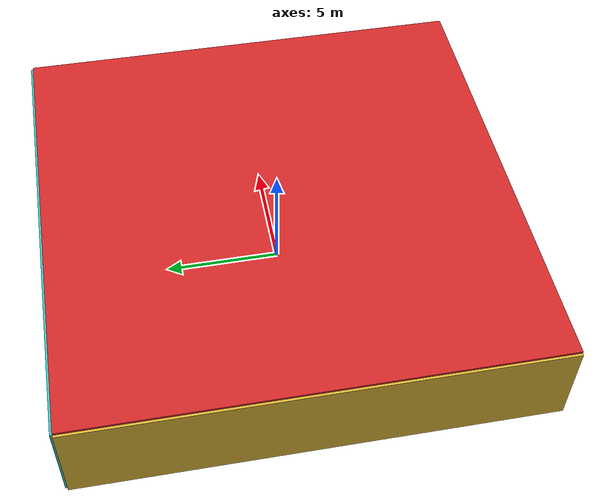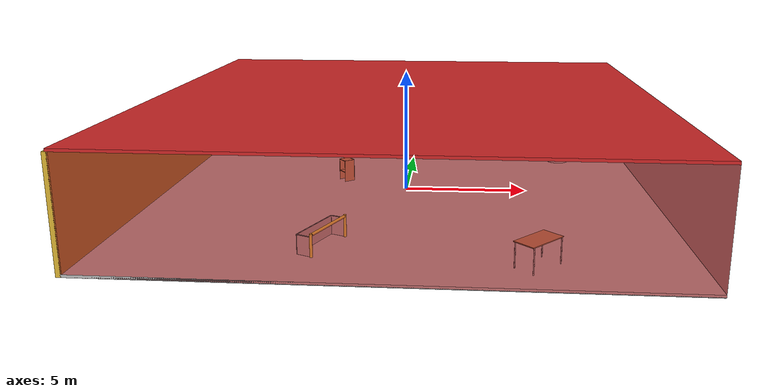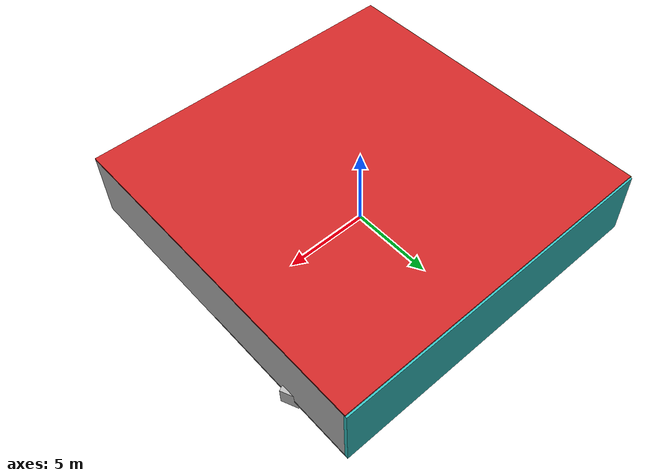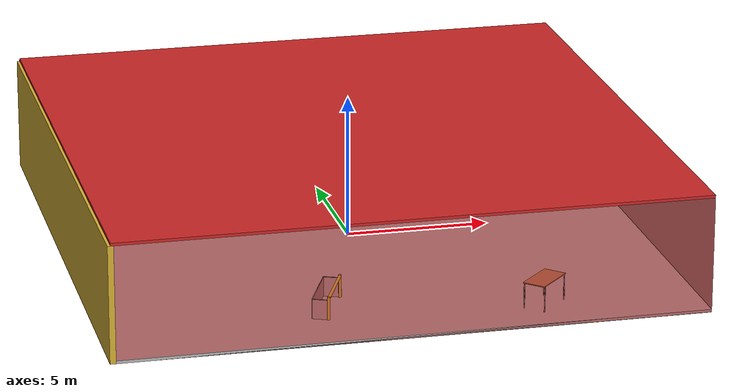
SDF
<sdf version="1.4">
 <world name="default">
  <physics type="ode">
   <max_step_size>0.001</max_step_size>
   <real_time_factor>1</real_time_factor>
   <real_time_update_rate>1000</real_time_update_rate>
   <gravity>0 0 -9.8</gravity>
  </physics>
  <scene><ambient>0.4 0.4 0.4 1</ambient><background>0.7 0.7 0.7 1</background><shadows>1</shadows></scene>
  <model name="Surrounding">
   <static>1</static>
   <link name="Ceiling">
    <collision name="Ceiling_Collision"><geometry><box><size>20 20 0.1</size></box></geometry></collision>
    <visual name="Ceiling_Visual">
     <geometry><box><size>20 20 0.1</size></box></geometry>
     <material>
      <script><uri>file://media/materials/scripts/gazebo.material</uri><name>Gazebo/Red</name></script>
     </material>
    </visual>
    <pose>0 0 4.05 0 0 0</pose>
   </link>
   <link name="Wall_South">
    <collision name="Wall_South_Collision">
     <geometry><box><size>20 0 4</size></box></geometry>
     <pose>0 0 2 0 -0 0</pose>
    </collision>
    <visual name="Wall_South_Visual">
     <pose>0 0 2 0 -0 0</pose>
     <geometry><box><size>20 0 4</size></box></geometry>
     <material>
      <script><uri>file://media/materials/scripts/gazebo.material</uri><name>Gazebo/RedTransparent</name></script>
     </material>
    </visual>
    <velocity_decay><linear>0</linear><angular>0</angular></velocity_decay>
    <pose>0 -10 0 0 -0 0</pose>
   </link>
   <link name="Wall_East">
    <collision name="Wall_21_Collision">
     <geometry><box><size>20 0 4</size></box></geometry>
     <pose>0 0 2 0 -0 0</pose>
    </collision>
    <visual name="Wall_21_Visual">
     <pose>0 0 2 0 -0 0</pose>
     <geometry><box><size>20 0 4</size></box></geometry>
     <material>
      <script><uri>file://media/materials/scripts/gazebo.material</uri><name>Gazebo/Pioneer2Body</name></script>
     </material>
    </visual>
    <velocity_decay><linear>0</linear><angular>0</angular></velocity_decay>
    <pose>10 0 0 0 -0 1.5708</pose>
   </link>
   <link name="Wall_North">
    <collision name="Wall_22_Collision">
     <geometry><box><size>20 0.2 4</size></box></geometry>
     <pose>0 0 2 0 -0 0</pose>
    </collision>
    <visual name="Wall_22_Visual">
     <pose>0 0 2 0 -0 0</pose>
     <geometry><box><size>20 0.2 4</size></box></geometry>
     <material>
      <script><uri>file://media/materials/scripts/gazebo.material</uri><name>Gazebo/Turquoise</name></script>
     </material>
    </visual>
    <velocity_decay><linear>0</linear><angular>0</angular></velocity_decay>
    <pose>0 10 0 0 -0 0</pose>
   </link>
   <link name="Wall_West">
    <collision name="Wall_23_Collision">
     <geometry><box><size>20 0.2 4</size></box></geometry>
     <pose>0 0 2 0 -0 0</pose>
    </collision>
    <visual name="Wall_23_Visual">
     <pose>0 0 2 0 -0 0</pose>
     <geometry><box><size>20 0.2 4</size></box></geometry>
     <material>
      <script><uri>file://media/materials/scripts/gazebo.material</uri><name>Gazebo/Gold</name></script>
     </material>
    </visual>
    <velocity_decay><linear>0</linear><angular>0</angular></velocity_decay>
    <pose>-10 0 0 0 0 -1.5708</pose>
   </link>
   <link name="Ground_link">
    <collision name="collision">
     <pose>0 0 .05 0 -0 0</pose>
     <geometry><box><size>20 20 0.1</size></box></geometry>
    </collision>
    <visual name="visual">
     <pose>0 0 .05 0 -0 0</pose>
     <geometry><box><size>20 20 0.1</size></box></geometry>
     <material>
      <script><uri>file://media/materials/scripts/gazebo.material</uri><name>Gazebo/PioneerBody</name></script>
     </material>
    </visual>
   </link>
   <static>1</static>
  </model>
  <spherical_coordinates>
   <surface_model>EARTH_WGS84</surface_model>
   <latitude_deg>0</latitude_deg>
   <longitude_deg>0</longitude_deg>
   <elevation>0</elevation>
   <heading_deg>0</heading_deg>
  </spherical_coordinates>
  <light name="lightball_0" type="diffuse">
   <diffuse>0.8 0.8 0.8 1</diffuse>
   <specular>0.2 0.2 0.2 1</specular>
   <attenuation>
    <range>100</range>
    <constant>0.7</constant>
    <linear>0.01</linear>
    <quadratic>0.001</quadratic>
   </attenuation>
   <direction>-0.5 0.1 -0.9</direction>
   <pose>1.91504260715 -8.3926449069 0.900678219334 0 0 0</pose>
  </light>
  <light name="lightball_1" type="diffuse">
   <diffuse>0.8 0.8 0.8 1</diffuse>
   <specular>0.2 0.2 0.2 1</specular>
   <attenuation>
    <range>100</range>
    <constant>0.7</constant>
    <linear>0.01</linear>
    <quadratic>0.001</quadratic>
   </attenuation>
   <direction>-0.5 0.1 -0.9</direction>
   <pose>-9.53707785545 1.76977716374 1.60056100468 0 0 0</pose>
  </light>
  <light name="lightball_2" type="diffuse">
   <diffuse>0.8 0.8 0.8 1</diffuse>
   <specular>0.2 0.2 0.2 1</specular>
   <attenuation>
    <range>100</range>
    <constant>0.7</constant>
    <linear>0.01</linear>
    <quadratic>0.001</quadratic>
   </attenuation>
   <direction>-0.5 0.1 -0.9</direction>
   <pose>-9.88690575918 4.07180819745 0.990848464383 0 0 0</pose>
  </light>
  <light name="lightball_3" type="diffuse">
   <diffuse>0.8 0.8 0.8 1</diffuse>
   <specular>0.2 0.2 0.2 1</specular>
   <attenuation>
    <range>100</range>
    <constant>0.7</constant>
    <linear>0.01</linear>
    <quadratic>0.001</quadratic>
   </attenuation>
   <direction>-0.5 0.1 -0.9</direction>
   <pose>-9.74606732374 -9.20239382388 0.625157746872 0 0 0</pose>
  </light>
  <light name="lightball_4" type="diffuse">
   <diffuse>0.8 0.8 0.8 1</diffuse>
   <specular>0.2 0.2 0.2 1</specular>
   <attenuation>
    <range>100</range>
    <constant>0.7</constant>
    <linear>0.01</linear>
    <quadratic>0.001</quadratic>
   </attenuation>
   <direction>-0.5 0.1 -0.9</direction>
   <pose>-4.77691938766 6.03308747492 2.98178288281 0 0 0</pose>
  </light>
  <include><uri>model://cabinet</uri><pose>-5.51768880356 4.96869121797 0 0 0 0.714054514764</pose></include>
  <include>
   <uri>model://robocup_3Dsim_goal</uri>
   <pose>-2.10958634166 -7.08756553242 0 0 0 2.74006760039</pose>
  </include>
  <include><uri>model://cabinet</uri><pose>-2.65688241586 0.785224672737 0 0 0 0.647351261415</pose></include>
  <include><uri>model://table</uri><pose>4.75377747926 -8.23504154927 0 0 0 0.800198356598</pose></include>
  <include>
   <uri>model://textured_shapes</uri>
   <pose>8.26622919153 5.25823593615 0 0 0 1.97684558378</pose>
  </include>
 </world>
</sdf>

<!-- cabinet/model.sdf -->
<sdf version="1.5">
  <model name="cabinet">
    <static>true</static>
    <link name="cabinet_bottom_plate">
      <inertial>
        <pose>0 0 -1 0 0 0</pose>
        <inertia>
          <ixx>2.050000</ixx>
          <ixy>0</ixy>
          <ixz>0</ixz>
          <iyy>2.050000</iyy>
          <iyz>0</iyz>
          <izz>2.050000</izz>
        </inertia>
        <mass>25.000000</mass>
      </inertial>
      <collision name="cabinet_bottom_plate_geom">
        <pose>0 0 0.010000 0 0 0</pose>
        <geometry>
          <box>
            <size>0.450000 0.450000 0.020000</size>
          </box>
        </geometry>
      </collision>
      <visual name="cabinet_bottom_plate_geom_visual">
        <pose>0 0 0.010000 0 0 0</pose>
        <geometry>
          <box>
            <size>0.450000 0.450000 0.020000</size>
          </box>
        </geometry>
        <material>
          <script>
            <uri>model://media/materials/scripts/gazebo.material</uri>
            <name>Gazebo/Wood</name>
          </script>
        </material>
      </visual>
      <collision name="cabinet_bottom_plate_geom_cabinet_back_plate">
        <pose>0.235000 0 0.510000 0 0 0</pose>
        <geometry>
          <box>
            <size>0.020000 0.450000 1.020000</size>
          </box>
        </geometry>
      </collision>
      <visual name="cabinet_bottom_plate_geom_cabinet_back_plate_visual">
        <pose>0.235000 0 0.510000 0 0 0</pose>
        <geometry>
          <box>
            <size>0.020000 0.450000 1.020000</size>
          </box>
        </geometry>
        <material>
          <script>
            <uri>model://media/materials/scripts/gazebo.material</uri>
            <name>Gazebo/Wood</name>
          </script>
        </material>
      </visual>
      <collision name="cabinet_bottom_plate_geom_cabinet_left_plate">
        <pose>0 0.235000 0.510000 0 0 0</pose>
        <geometry>
          <box>
            <size>0.450000 0.020000 1.020000</size>
          </box>
        </geometry>
      </collision>
      <visual name="cabinet_bottom_plate_geom_cabinet_left_plate_visual">
        <pose>0 0.235000 0.510000 0 0 0</pose>
        <geometry>
          <box>
            <size>0.450000 0.020000 1.020000</size>
          </box>
        </geometry>
        <material>
          <script>
            <uri>model://media/materials/scripts/gazebo.material</uri>
            <name>Gazebo/Wood</name>
          </script>
        </material>
      </visual>
      <collision name="cabinet_bottom_plate_geom_cabinet_middle_plate">
        <pose>0 0 0.510000 0 0 0</pose>
        <geometry>
          <box>
            <size>0.450000 0.450000 0.020000</size>
          </box>
        </geometry>
      </collision>
      <visual name="cabinet_bottom_plate_geom_cabinet_middle_plate_visual">
        <pose>0 0 0.510000 0 0 0</pose>
        <geometry>
          <box>
            <size>0.450000 0.450000 0.020000</size>
          </box>
        </geometry>
        <material>
          <script>
            <uri>model://media/materials/scripts/gazebo.material</uri>
            <name>Gazebo/Wood</name>
          </script>
        </material>
      </visual>
      <collision name="cabinet_bottom_plate_geom_cabinet_right_plate">
        <pose>0 -0.235000 0.510000 0 0 0</pose>
        <geometry>
          <box>
            <size>0.450000 0.020000 1.020000</size>
          </box>
        </geometry>
      </collision>
      <visual name="cabinet_bottom_plate_geom_cabinet_right_plate_visual">
        <pose>0 -0.235000 0.510000 0 0 0</pose>
        <geometry>
          <box>
            <size>0.450000 0.020000 1.020000</size>
          </box>
        </geometry>
        <material>
          <script>
            <uri>model://media/materials/scripts/gazebo.material</uri>
            <name>Gazebo/Wood</name>
          </script>
        </material>
      </visual>
      <collision name="cabinet_bottom_plate_geom_cabinet_top_plate">
        <pose>0 0 1.010000 0 0 0</pose>
        <geometry>
          <box>
            <size>0.450000 0.450000 0.020000</size>
          </box>
        </geometry>
      </collision>
      <visual name="cabinet_bottom_plate_geom_cabinet_top_plate_visual">
        <pose>0 0 1.010000 0 0 0</pose>
        <geometry>
          <box>
            <size>0.450000 0.450000 0.020000</size>
          </box>
        </geometry>
        <material>
          <script>
            <uri>model://media/materials/scripts/gazebo.material</uri>
            <name>Gazebo/Wood</name>
          </script>
        </material>
      </visual>
    </link>
  </model>
</sdf>

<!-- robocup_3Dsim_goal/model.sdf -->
<sdf version="1.5">
  <model name="robocup_3d_goal">
    <static>true</static>
    <link name="left_post">
      <pose>0 1.05 0.45 0 0 0</pose>
      <collision name="collision">
        <geometry>
          <cylinder>
            <radius>0.05</radius>
            <length>0.9</length>
          </cylinder>
        </geometry>
      </collision>
      <visual name="visual">
        <geometry>
          <cylinder>
            <radius>0.05</radius>
            <length>0.9</length>
          </cylinder>
        </geometry>
        <material>
          <script>
            <uri>file://media/materials/scripts/gazebo.material</uri>
            <name>Gazebo/ZincYellow</name>
          </script>
        </material>
      </visual>
    </link>
    <link name="left_support_horiz_lower">
      <pose>0.30 1.05 0.01 0 0 0</pose>
      <collision name="collision">
        <geometry>
          <box>
            <size>0.50 0.02 0.02</size>
          </box>
        </geometry>
      </collision>
      <visual name="visual">
        <geometry>
          <box>
            <size>0.50 0.02 0.02</size>
          </box>
        </geometry>
        <material>
          <script>
            <uri>file://media/materials/scripts/gazebo.material</uri>
            <name>Gazebo/White</name>
          </script>
        </material>
      </visual>
    </link>
    <link name="left_support_horiz_upper">
      <pose>0.30 1.05 0.79 0 0 0</pose>
      <collision name="collision">
        <geometry>
          <box>
            <size>0.50 0.02 0.02</size>
          </box>
        </geometry>
      </collision>
      <visual name="visual">
        <geometry>
          <box>
            <size>0.50 0.02 0.02</size>
          </box>
        </geometry>
        <material>
          <script>
            <uri>file://media/materials/scripts/gazebo.material</uri>
            <name>Gazebo/White</name>
          </script>
        </material>
      </visual>
    </link>
    <link name="left_support_vertical">
      <pose>0.56 1.05 0.4 0 1.5708 0</pose>
      <collision name="collision">
        <geometry>
          <box>
            <size>0.80 0.02 0.02</size>
          </box>
        </geometry>
      </collision>
      <visual name="visual">
        <geometry>
          <box>
            <size>0.80 0.02 0.02</size>
          </box>
        </geometry>
        <material>
          <script>
            <uri>file://media/materials/scripts/gazebo.material</uri>
            <name>Gazebo/White</name>
          </script>
        </material>
      </visual>
    </link>
    <link name="right_support_horiz_lower">
      <pose>0.30 -1.05 0.01 0 0 0</pose>
      <collision name="collision">
        <geometry>
          <box>
            <size>0.50 0.02 0.02</size>
          </box>
        </geometry>
      </collision>
      <visual name="visual">
        <geometry>
          <box>
            <size>0.50 0.02 0.02</size>
          </box>
        </geometry>
        <material>
          <script>
            <uri>file://media/materials/scripts/gazebo.material</uri>
            <name>Gazebo/White</name>
          </script>
        </material>
      </visual>
    </link>
    <link name="right_support_horiz_upper">
      <pose>0.30 -1.05 0.79 0 0 0</pose>
      <collision name="collision">
        <geometry>
          <box>
            <size>0.50 0.02 0.02</size>
          </box>
        </geometry>
      </collision>
      <visual name="visual">
        <geometry>
          <box>
            <size>0.50 0.02 0.02</size>
          </box>
        </geometry>
        <material>
          <script>
            <uri>file://media/materials/scripts/gazebo.material</uri>
            <name>Gazebo/White</name>
          </script>
        </material>
      </visual>
    </link>
    <link name="right_support_vertical">
      <pose>0.56 -1.05 0.4 0 1.5708 0</pose>
      <collision name="collision">
        <geometry>
          <box>
            <size>0.80 0.02 0.02</size>
          </box>
        </geometry>
      </collision>
      <visual name="visual">
        <geometry>
          <box>
            <size>0.80 0.02 0.02</size>
          </box>
        </geometry>
        <material>
          <script>
            <uri>file://media/materials/scripts/gazebo.material</uri>
            <name>Gazebo/White</name>
          </script>
        </material>
      </visual>
    </link>
    <link name="center_support_horiz_lower">
      <pose>0.56 0 0.01 0 1.5708 0</pose>
      <collision name="collision">
        <geometry>
          <box>
            <size>0.02 2.08 0.02</size>
          </box>
        </geometry>
      </collision>
      <visual name="visual">
        <geometry>
          <box>
            <size>0.02 2.08 0.02</size>
          </box>
        </geometry>
        <material>
          <script>
            <uri>file://media/materials/scripts/gazebo.material</uri>
            <name>Gazebo/White</name>
          </script>
        </material>
      </visual>
    </link>
    <link name="center_support_horiz_upper">
      <pose>0.56 0 0.79 0 1.5708 0</pose>
      <collision name="collision">
        <geometry>
          <box>
            <size>0.02 2.08 0.02</size>
          </box>
        </geometry>
      </collision>
      <visual name="visual">
        <geometry>
          <box>
            <size>0.02 2.08 0.02</size>
          </box>
        </geometry>
        <material>
          <script>
            <uri>file://media/materials/scripts/gazebo.material</uri>
            <name>Gazebo/White</name>
          </script>
        </material>
      </visual>
    </link>
    <link name="right_post">
      <pose>0 -1.05 0.45 0 0 0</pose>
      <collision name="collision">
        <geometry>
          <cylinder>
            <radius>0.05</radius>
            <length>0.9</length>
          </cylinder>
        </geometry>
      </collision>
      <visual name="visual">
        <geometry>
          <cylinder>
            <radius>0.05</radius>
            <length>0.9</length>
          </cylinder>
        </geometry>
        <material>
          <script>
            <uri>file://media/materials/scripts/gazebo.material</uri>
            <name>Gazebo/ZincYellow</name>
          </script>
        </material>
      </visual>
    </link>
    <link name="crossbar">
      <pose>0 0 0.85 1.57 1.57 0</pose>
      <collision name="collision">
        <geometry>
          <cylinder>
            <radius>0.05</radius>
            <length>2.0</length>
          </cylinder>
        </geometry>
      </collision>
      <visual name="visual">
        <geometry>
          <cylinder>
            <radius>0.05</radius>
            <length>2.0</length>
          </cylinder>
        </geometry>
        <material>
          <script>
            <uri>file://media/materials/scripts/gazebo.material</uri>
            <name>Gazebo/ZincYellow</name>
          </script>
        </material>
      </visual>
    </link>
    <link name="center_net">
      <pose>0.56 0 0.40 0 0 0</pose>
      <collision name="collision">
        <geometry>
          <box>
            <size>0.01 2.1 0.80</size>
          </box>
        </geometry>
      </collision>
      <visual name="visual">
        <geometry>
          <box>
            <size>0.01 2.1 0.80</size>
          </box>
        </geometry>
        <material>
          <script>
            <uri>model://../model_source/models/robocup09_spl_field/materials/scripts/</uri>
            <uri>model://../model_source/models/robocup09_spl_field/materials/textures/</uri>
            <name>RoboCup/Net</name>
          </script>
        </material>
      </visual>
    </link>
    <link name="left_net">
      <pose>0.30 1.05 0.40 0 0 0</pose>
      <collision name="collision">
        <geometry>
          <box>
            <size>0.50 0.01 0.76</size>
          </box>
        </geometry>
      </collision>
      <visual name="visual">
        <geometry>
          <box>
            <size>0.50 0.01 0.76</size>
          </box>
        </geometry>
        <material>
          <script>
            <uri>model://../model_source/models/robocup09_spl_field/materials/scripts/</uri>
            <uri>model://../model_source/models/robocup09_spl_field/materials/textures/</uri>
            <name>RoboCup/Net</name>
          </script>
        </material>
      </visual>
    </link>
    <link name="right_net">
      <pose>0.30 -1.05 0.40 0 0 0</pose>
      <collision name="collision">
        <geometry>
          <box>
            <size>0.50 0.01 0.76</size>
          </box>
        </geometry>
      </collision>
      <visual name="visual">
        <geometry>
          <box>
            <size>0.50 0.01 0.76</size>
          </box>
        </geometry>
        <material>
          <script>
            <uri>model://../model_source/models/robocup09_spl_field/materials/scripts/</uri>
            <uri>model://../model_source/models/robocup09_spl_field/materials/textures/</uri>
            <name>RoboCup/Net</name>
          </script>
        </material>
      </visual>
    </link>
  </model>
</sdf>

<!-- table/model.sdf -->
<sdf version="1.5">
  <model name="table">
    <static>true</static>
    <link name="link">
      <collision name="surface">
        <pose>0 0 1.0 0 0 0</pose>
        <geometry>
          <box>
            <size>1.5 0.8 0.03</size>
          </box>
        </geometry>
        <surface>
          <friction>
            <ode>
              <mu>0.6</mu>
              <mu2>0.6</mu2>
            </ode>
          </friction>
        </surface>
      </collision>
      <visual name="visual1">
        <pose>0 0 1.0 0 0 0</pose>
        <geometry>
          <box>
            <size>1.5 0.8 0.03</size>
          </box>
        </geometry>
        <material>
          <script>
            <uri>model://media/materials/scripts/gazebo.material</uri>
            <name>Gazebo/Wood</name>
          </script>
        </material>
      </visual>
      <collision name="front_left_leg">
        <pose>0.68 0.38 0.5 0 0 0</pose>
        <geometry>
          <cylinder>
            <radius>0.02</radius>
            <length>1.0</length>
          </cylinder>
        </geometry>
      </collision>
      <visual name="front_left_leg">
        <pose>0.68 0.38 0.5 0 0 0</pose>
        <geometry>
          <cylinder>
            <radius>0.02</radius>
            <length>1.0</length>
          </cylinder>
        </geometry>
        <material>
          <script>
            <uri>model://media/materials/scripts/gazebo.material</uri>
            <name>Gazebo/Grey</name>
          </script>
        </material>
      </visual>
      <collision name="front_right_leg">
        <pose>0.68 -0.38 0.5 0 0 0</pose>
        <geometry>
          <cylinder>
            <radius>0.02</radius>
            <length>1.0</length>
          </cylinder>
        </geometry>
      </collision>
      <visual name="front_right_leg">
        <pose>0.68 -0.38 0.5 0 0 0</pose>
        <geometry>
          <cylinder>
            <radius>0.02</radius>
            <length>1.0</length>
          </cylinder>
        </geometry>
        <material>
          <script>
            <uri>model://media/materials/scripts/gazebo.material</uri>
            <name>Gazebo/Grey</name>
          </script>
        </material>
      </visual>
      <collision name="back_right_leg">
        <pose>-0.68 -0.38 0.5 0 0 0</pose>
        <geometry>
          <cylinder>
            <radius>0.02</radius>
            <length>1.0</length>
          </cylinder>
        </geometry>
      </collision>
      <visual name="back_right_leg">
        <pose>-0.68 -0.38 0.5 0 0 0</pose>
        <geometry>
          <cylinder>
            <radius>0.02</radius>
            <length>1.0</length>
          </cylinder>
        </geometry>
        <material>
          <script>
            <uri>model://media/materials/scripts/gazebo.material</uri>
            <name>Gazebo/Grey</name>
          </script>
        </material>
      </visual>
      <collision name="back_left_leg">
        <pose>-0.68 0.38 0.5 0 0 0</pose>
        <geometry>
          <cylinder>
            <radius>0.02</radius>
            <length>1.0</length>
          </cylinder>
        </geometry>
      </collision>
      <visual name="back_left_leg">
        <pose>-0.68 0.38 0.5 0 0 0</pose>
        <geometry>
          <cylinder>
            <radius>0.02</radius>
            <length>1.0</length>
          </cylinder>
        </geometry>
        <material>
          <script>
            <uri>model://media/materials/scripts/gazebo.material</uri>
            <name>Gazebo/Grey</name>
          </script>
        </material>
      </visual>
    </link>
  </model>
</sdf>

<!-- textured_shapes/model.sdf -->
<sdf version="1.6">
  <model name="textured_shapes">
    <pose>0 0 0.5 0 0 0</pose>
    <link name="box">
      <pose>0 -1.5 0 0 0 0</pose>
      <collision name="collision">
        <geometry>
          <box>
            <size>1 1 1</size>
          </box>
        </geometry>
      </collision>
      <visual name="visual">
        <geometry>
          <box>
            <size>1 1 1</size>
          </box>
        </geometry>
        <material>
          <script>
            <uri>model://../model_source/models/textured_shapes/materials/scripts</uri>
            <uri>model://../model_source/models/textured_shapes/materials/textures</uri>
            <name>TexturedShape/Squares</name>
          </script>
        </material>
      </visual>
    </link>
    <link name="sphere">
      <collision name="collision">
        <geometry>
          <sphere>
            <radius>0.5</radius>
          </sphere>
        </geometry>
      </collision>
      <visual name="visual">
        <geometry>
          <sphere>
            <radius>0.5</radius>
          </sphere>
        </geometry>
        <material>
          <script>
            <uri>model://../model_source/models/textured_shapes/materials/scripts</uri>
            <uri>model://../model_source/models/textured_shapes/materials/textures</uri>
            <name>TexturedShape/Squares</name>
          </script>
        </material>
      </visual>
    </link>
    <link name="cylinder">
      <pose>0 1.5 0 0 0 0</pose>
      <collision name="collision">
        <geometry>
          <cylinder>
            <radius>0.5</radius>
            <length>1</length>
          </cylinder>
        </geometry>
      </collision>
      <visual name="visual">
        <geometry>
          <cylinder>
            <radius>0.5</radius>
            <length>1</length>
          </cylinder>
        </geometry>
        <material>
          <script>
            <uri>model://../model_source/models/textured_shapes/materials/scripts</uri>
            <uri>model://../model_source/models/textured_shapes/materials/textures</uri>
            <name>TexturedShape/Squares</name>
          </script>
        </material>
      </visual>
    </link>
  </model>
</sdf>
